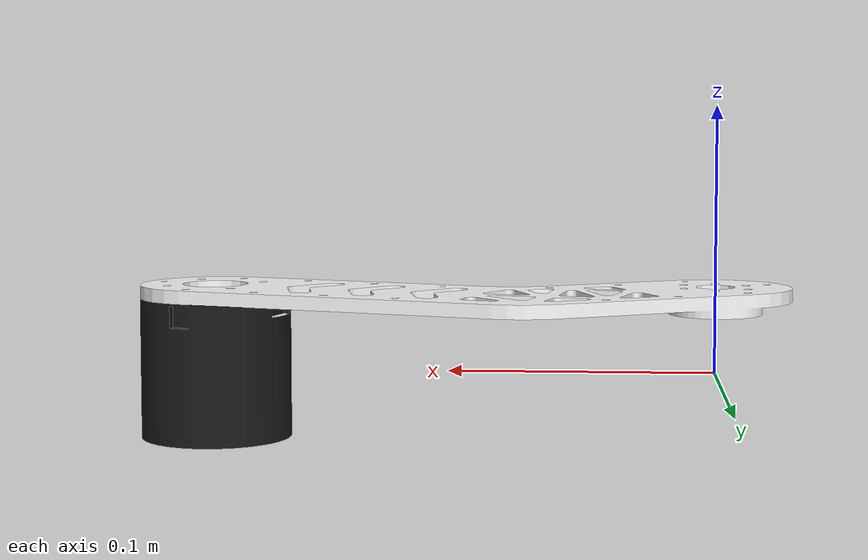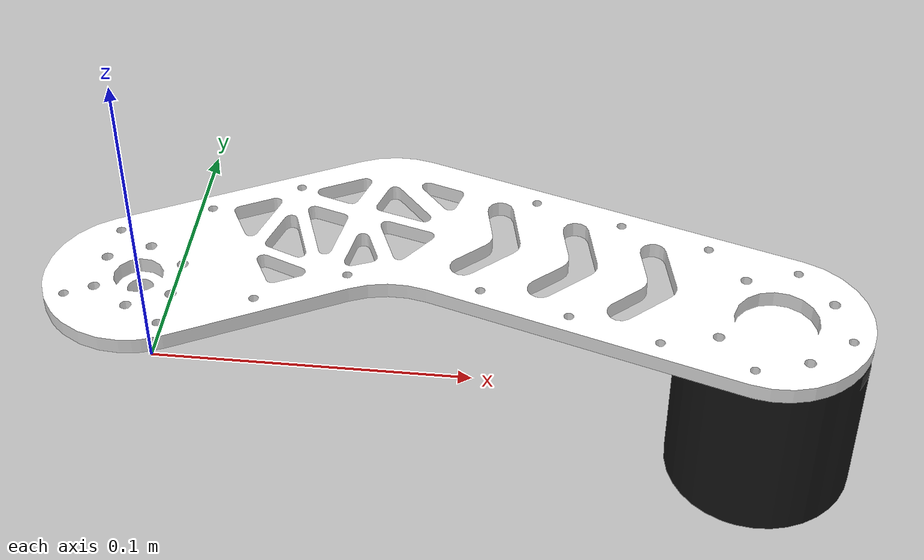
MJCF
<mujoco model="link3">
  <default>
    <default class="visual">
      <geom group="2" type="mesh" contype="0" conaffinity="0"/>
    </default>
    <default class="collision">
      <geom group="3" type="mesh"/>
    </default>
  </default>
  <asset>
    <material name="motor.001" specular="0.5" shininess="0.25" rgba="0.100000 0.100000 0.100000 1.000000"/>
    <material name="white_metal" specular="0.5" shininess="0.25" rgba="1.000000 1.000000 1.000000 1.000000"/>
    <mesh file="link3_0.obj"/>
    <mesh file="link3_1.obj"/>
    <mesh file="link3_collision_0.obj"/>
    <mesh file="link3_collision_1.obj"/>
    <mesh file="link3_collision_2.obj"/>
  </asset>
  <worldbody>
    <body name="link3">
      <geom mesh="link3_0" material="motor.001" class="visual"/>
      <geom mesh="link3_1" material="white_metal" class="visual"/>
      <geom mesh="link3_collision_0" rgba="0.78299834173966 0.3959246163681589 0.5786077464630605 1" class="collision"/>
      <geom mesh="link3_collision_1" rgba="0.9405076916378473 0.24119291892543981 0.46494580771184835 1" class="collision"/>
      <geom mesh="link3_collision_2" rgba="0.8024392098388231 0.1564722908803654 0.939881699419295 1" class="collision"/>
    </body>
  </worldbody>
</mujoco>
